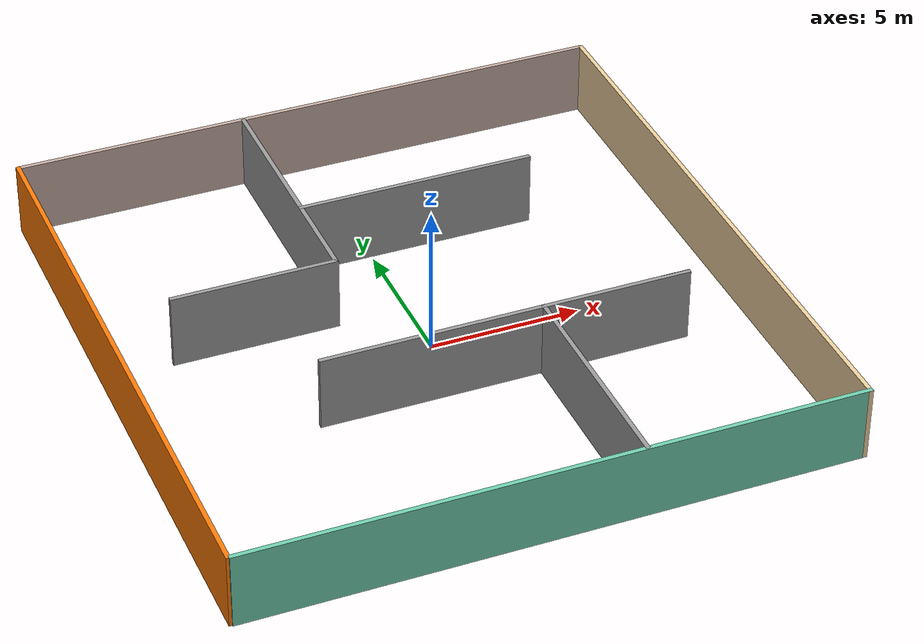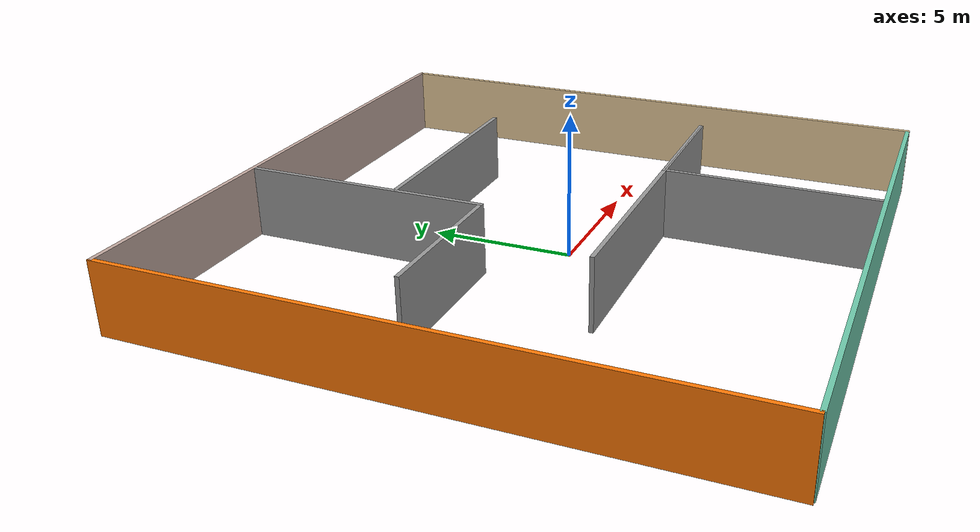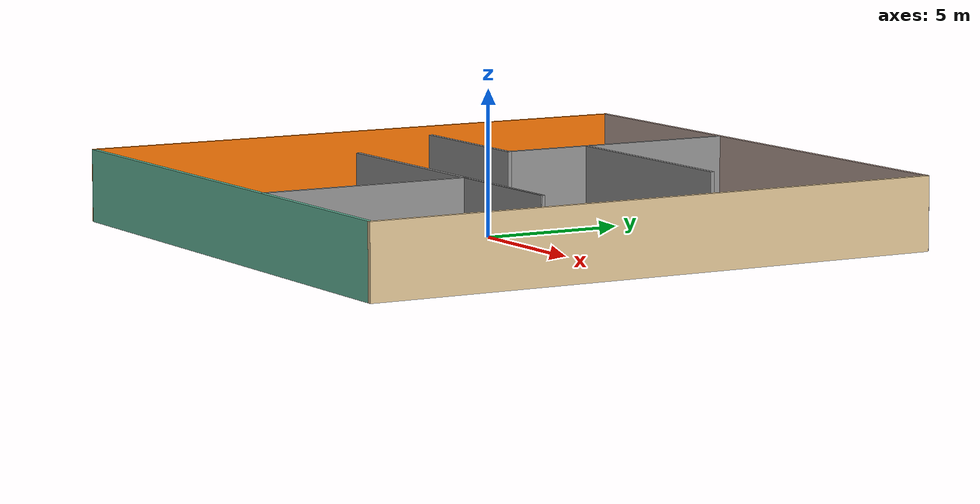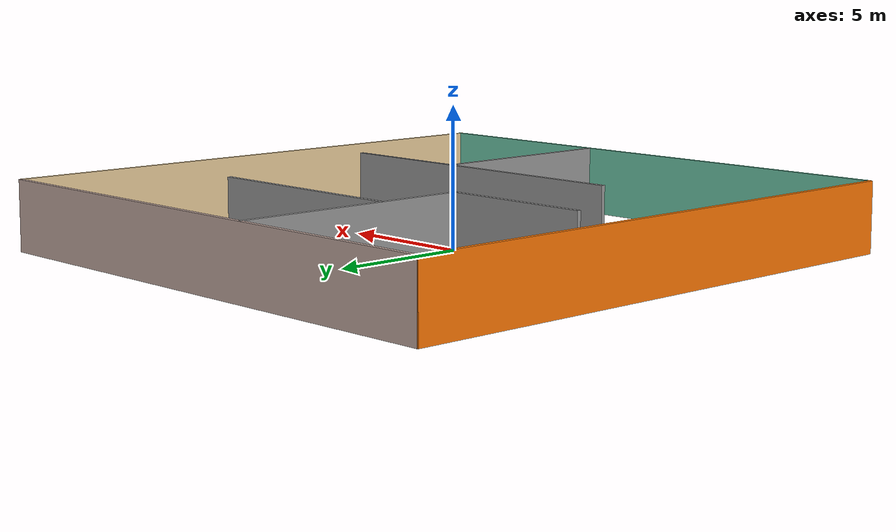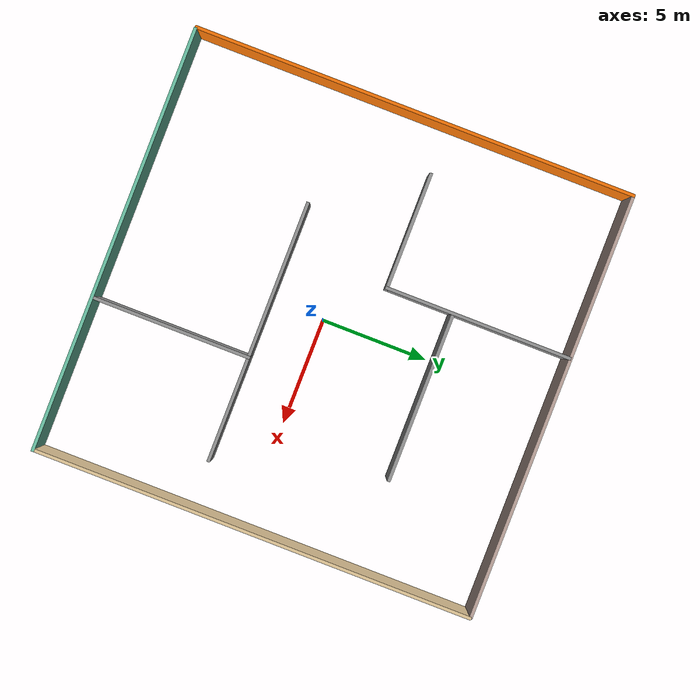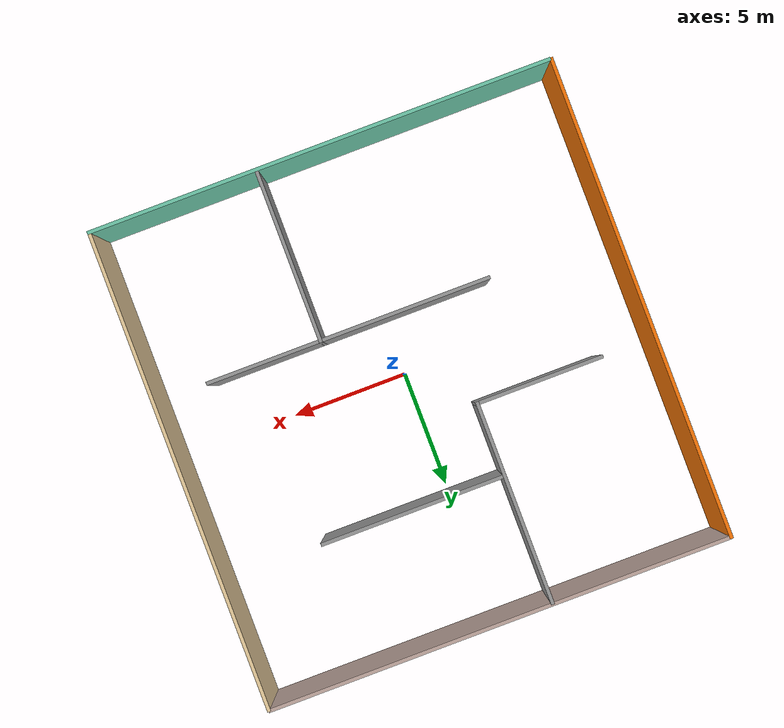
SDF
<?xml version='1.0'?>
<sdf version='1.7'>
  <model name='updated_world'>
    <pose>-0.057688 0.485307 0 0 -0 0</pose>
    <link name='Wall_0'>
      <collision name='Wall_0_Collision'>
        <geometry>
          <box>
            <size>20 0.15 2.5</size>
          </box>
        </geometry>
        <pose>0 0 1.25 0 -0 0</pose>
      </collision>
      <visual name='Wall_0_Visual'>
        <pose>0 0 1.25 0 -0 0</pose>
        <geometry>
          <box>
            <size>20 0.15 2.5</size>
          </box>
        </geometry>
        <material>
          <script>
            <uri>file://media/materials/scripts/gazebo.material</uri>
            <name>Gazebo/Grey</name>
          </script>
          <ambient>0.435294 0.796078 0.67451 1</ambient>
        </material>
        <meta>
          <layer>0</layer>
        </meta>
      </visual>
      <pose>0.049867 -10.3233 0 0 -0 3.14159</pose>
    </link>
    <link name='Wall_14'>
      <collision name='Wall_14_Collision'>
        <geometry>
          <box>
            <size>8.75 0.15 2.5</size>
          </box>
        </geometry>
        <pose>0 0 1.25 0 -0 0</pose>
      </collision>
      <visual name='Wall_14_Visual'>
        <pose>0 0 1.25 0 -0 0</pose>
        <geometry>
          <box>
            <size>8.75 0.15 2.5</size>
          </box>
        </geometry>
        <material>
          <script>
            <uri>file://media/materials/scripts/gazebo.material</uri>
            <name>Gazebo/Grey</name>
          </script>
          <ambient>1 1 1 1</ambient>
        </material>
        <meta>
          <layer>0</layer>
        </meta>
      </visual>
      <pose>-2.27724 5.9639 0 0 -0 -1.5708</pose>
    </link>
    <link name='Wall_15'>
      <collision name='Wall_15_Collision'>
        <geometry>
          <box>
            <size>5.5 0.15 2.5</size>
          </box>
        </geometry>
        <pose>0 0 1.25 0 -0 0</pose>
      </collision>
      <visual name='Wall_15_Visual'>
        <pose>0 0 1.25 0 -0 0</pose>
        <geometry>
          <box>
            <size>5.5 0.15 2.5</size>
          </box>
        </geometry>
        <material>
          <script>
            <uri>file://media/materials/scripts/gazebo.material</uri>
            <name>Gazebo/Grey</name>
          </script>
          <ambient>1 1 1 1</ambient>
        </material>
        <meta>
          <layer>0</layer>
        </meta>
      </visual>
      <pose>-4.95224 1.6639 0 0 -0 3.14159</pose>
    </link>
    <link name='Wall_17'>
      <collision name='Wall_17_Collision'>
        <geometry>
          <box>
            <size>7.5 0.15 2.5</size>
          </box>
        </geometry>
        <pose>0 0 1.25 0 -0 0</pose>
      </collision>
      <visual name='Wall_17_Visual'>
        <pose>0 0 1.25 0 -0 0</pose>
        <geometry>
          <box>
            <size>7.5 0.15 2.5</size>
          </box>
        </geometry>
        <material>
          <script>
            <uri>file://media/materials/scripts/gazebo.material</uri>
            <name>Gazebo/Grey</name>
          </script>
          <ambient>1 1 1 1</ambient>
        </material>
        <meta>
          <layer>0</layer>
        </meta>
      </visual>
      <pose>2.76804 -6.61141 0 0 -0 1.5708</pose>
    </link>
    <link name='Wall_18'>
      <collision name='Wall_18_Collision'>
        <geometry>
          <box>
            <size>5 0.15 2.5</size>
          </box>
        </geometry>
        <pose>0 0 1.25 0 -0 0</pose>
      </collision>
      <visual name='Wall_18_Visual'>
        <pose>0 0 1.25 0 -0 0</pose>
        <geometry>
          <box>
            <size>5 0.15 2.5</size>
          </box>
        </geometry>
        <material>
          <script>
            <uri>file://media/materials/scripts/gazebo.material</uri>
            <name>Gazebo/Grey</name>
          </script>
          <ambient>1 1 1 1</ambient>
        </material>
        <meta>
          <layer>0</layer>
        </meta>
      </visual>
      <pose>5.19304 -2.93641 0 0 -0 0</pose>
    </link>
    <link name='Wall_19'>
      <collision name='Wall_19_Collision'>
        <geometry>
          <box>
            <size>12.25 0.15 2.5</size>
          </box>
        </geometry>
        <pose>0 0 1.25 0 -0 0</pose>
      </collision>
      <visual name='Wall_19_Visual'>
        <pose>0 0 1.25 0 -0 0</pose>
        <geometry>
          <box>
            <size>12.25 0.15 2.5</size>
          </box>
        </geometry>
        <material>
          <script>
            <uri>file://media/materials/scripts/gazebo.material</uri>
            <name>Gazebo/Grey</name>
          </script>
          <ambient>1 1 1 1</ambient>
        </material>
        <meta>
          <layer>0</layer>
        </meta>
      </visual>
      <pose>1.56804 -2.93641 0 0 -0 3.14159</pose>
    </link>
    <link name='Wall_21'>
      <collision name='Wall_21_Collision'>
        <geometry>
          <box>
            <size>8 0.15 2.5</size>
          </box>
        </geometry>
        <pose>0 0 1.25 0 -0 0</pose>
      </collision>
      <visual name='Wall_21_Visual'>
        <pose>0 0 1.25 0 -0 0</pose>
        <geometry>
          <box>
            <size>8 0.15 2.5</size>
          </box>
        </geometry>
        <material>
          <script>
            <uri>file://media/materials/scripts/gazebo.material</uri>
            <name>Gazebo/Grey</name>
          </script>
          <ambient>1 1 1 1</ambient>
        </material>
        <meta>
          <layer>0</layer>
        </meta>
      </visual>
      <pose>1.64776 4.78792 0 0 -0 0</pose>
    </link>
    <link name='Wall_3'>
      <collision name='Wall_3_Collision'>
        <geometry>
          <box>
            <size>20.75 0.15 2.5</size>
          </box>
        </geometry>
        <pose>0 0 1.25 0 -0 0</pose>
      </collision>
      <visual name='Wall_3_Visual'>
        <pose>0 0 1.25 0 -0 0</pose>
        <geometry>
          <box>
            <size>20.75 0.15 2.5</size>
          </box>
        </geometry>
        <material>
          <script>
            <uri>file://media/materials/scripts/gazebo.material</uri>
            <name>Gazebo/Grey</name>
          </script>
          <ambient>0.996078 0.47451 0.0196078 1</ambient>
        </material>
        <meta>
          <layer>0</layer>
        </meta>
      </visual>
      <pose>-9.97487 0.013328 0 0 -0 1.5708</pose>
    </link>
    <link name='Wall_6'>
      <collision name='Wall_6_Collision'>
        <geometry>
          <box>
            <size>20.75 0.15 2.5</size>
          </box>
        </geometry>
        <pose>0 0 1.25 0 -0 0</pose>
      </collision>
      <visual name='Wall_6_Visual'>
        <pose>0 0 1.25 0 -0 0</pose>
        <geometry>
          <box>
            <size>20.75 0.15 2.5</size>
          </box>
        </geometry>
        <material>
          <script>
            <uri>file://media/materials/scripts/gazebo.material</uri>
            <name>Gazebo/Grey</name>
          </script>
          <ambient>0.921569 0.807843 0.615686 1</ambient>
        </material>
        <meta>
          <layer>0</layer>
        </meta>
      </visual>
      <pose>9.97487 -0.023349 0 0 -0 1.5708</pose>
    </link>
    <link name='Wall_8'>
      <collision name='Wall_8_Collision'>
        <geometry>
          <box>
            <size>20 0.15 2.5</size>
          </box>
        </geometry>
        <pose>0 0 1.25 0 -0 0</pose>
      </collision>
      <visual name='Wall_8_Visual'>
        <pose>0 0 1.25 0 -0 0</pose>
        <geometry>
          <box>
            <size>20 0.15 2.5</size>
          </box>
        </geometry>
        <material>
          <script>
            <uri>file://media/materials/scripts/gazebo.material</uri>
            <name>Gazebo/Grey</name>
          </script>
          <ambient>0.760784 0.662745 0.627451 1</ambient>
        </material>
        <meta>
          <layer>0</layer>
        </meta>
      </visual>
      <pose>-0.010091 10.3233 0 0 -0 3.14159</pose>
    </link>
    <static>1</static>
  </model>
</sdf>
